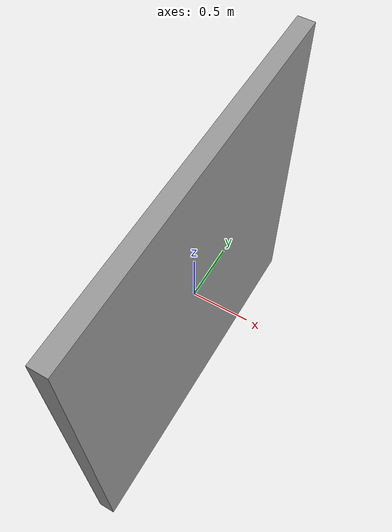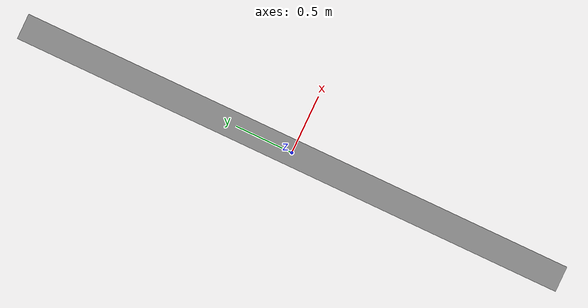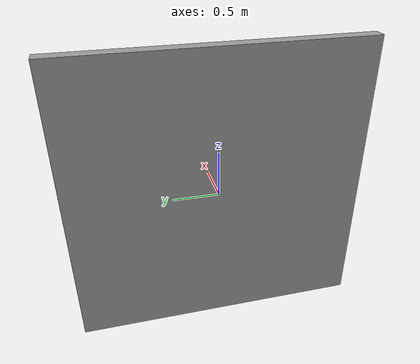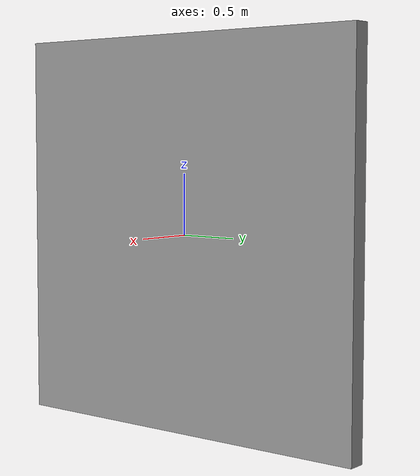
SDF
<?xml version="1.0"?>
<sdf version="1.8">
    <model name = "garage_door">
        <static>true</static>
        <link name = "door_link">
            <visual name = "door_visual">
                <geometry>
                    <box>
                        <size> 0.15 3.30 3.25 </size>
                    </box>
                </geometry>
                <material>
                    <ambient>0.3 0.3 0.3 1</ambient>
                    <diffuse>0.6 0.6 0.6 1</diffuse>
                    <specular>0.9 0.9 0.9 1</specular>
                    <emissive>0 0 0 1</emissive>
                </material>
            </visual>
        </link>
    </model>
</sdf>
